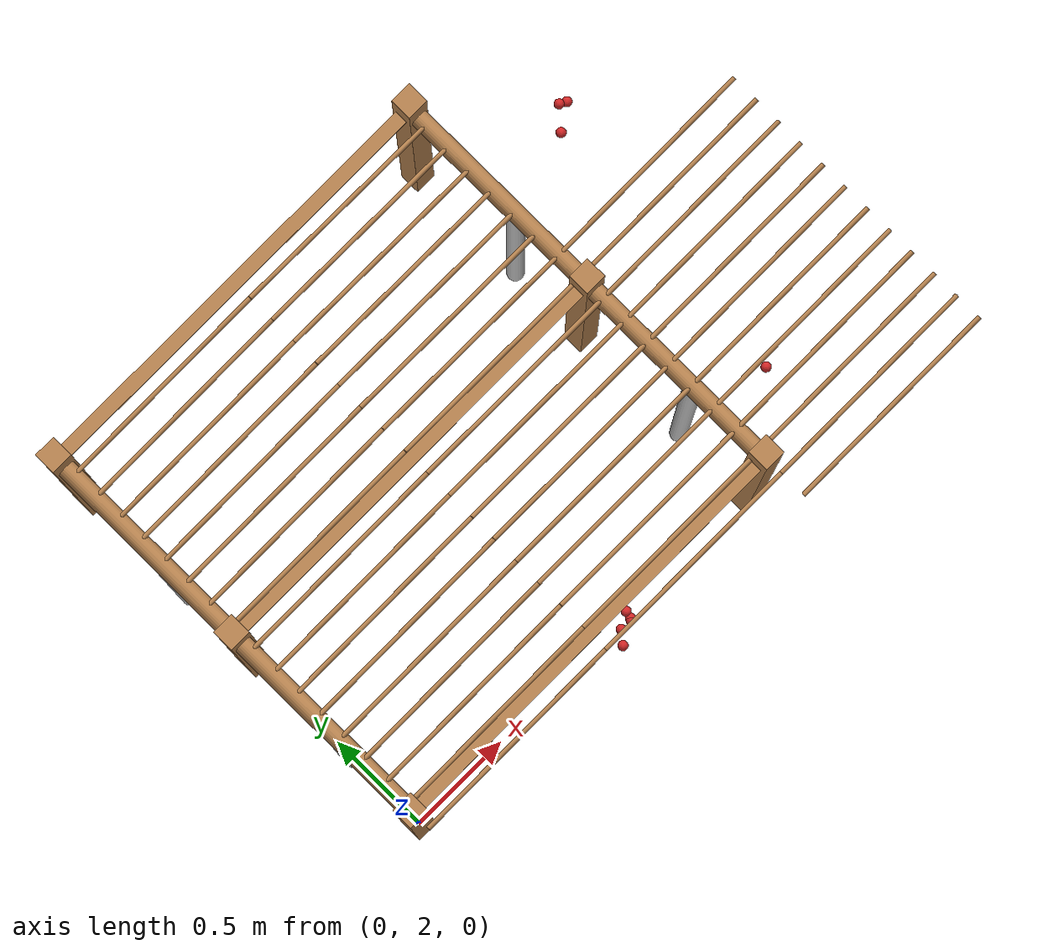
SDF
<sdf version="1.4">
 <model name="pergola">
  <include><name>post_2</name><pose>0.0 2.0 0 0 0 0</pose><uri>model://post</uri></include>
  <include><name>post_3</name><pose>0.0 3.0 0 0 0 0</pose><uri>model://post</uri></include>
  <include><name>post_4</name><pose>0.0 4.0 0 0 0 0</pose><uri>model://post</uri></include>
  <include><name>post_9</name><pose>2.0 2.0 0 0 0 0</pose><uri>model://post</uri></include>
  <include><name>post_10</name><pose>2.0 3.0 0 0 0 0</pose><uri>model://post</uri></include>
  <include><name>post_11</name><pose>2.0 4.0 0 0 0 0</pose><uri>model://post</uri></include>
  <link name="beam_2">
   <pose>1.0 2.0 1.81 0 0 0</pose>
   <collision name="collision"><geometry><box><size>2.0 0.06 0.02</size></box></geometry></collision>
   <visual name="visual">
    <geometry><box><size>2.0 0.06 0.02</size></box></geometry>
    <material><script><name>Gazebo/Wood</name></script></material>
   </visual>
   <inertial>
    <mass>5</mass>
    <inertia>
     <ixx>0.0016666666666666668</ixx>
     <ixy>0.0</ixy>
     <ixz>0.0</ixz>
     <iyy>1.6681666666666664</iyy>
     <iyz>0.0</iyz>
     <izz>1.6668333333333332</izz>
    </inertia>
   </inertial>
  </link>
  <link name="beam_3">
   <pose>1.0 3.0 1.81 0 0 0</pose>
   <collision name="collision"><geometry><box><size>2.0 0.06 0.02</size></box></geometry></collision>
   <visual name="visual">
    <geometry><box><size>2.0 0.06 0.02</size></box></geometry>
    <material><script><name>Gazebo/Wood</name></script></material>
   </visual>
   <inertial>
    <mass>5</mass>
    <inertia>
     <ixx>0.0016666666666666668</ixx>
     <ixy>0.0</ixy>
     <ixz>0.0</ixz>
     <iyy>1.6681666666666664</iyy>
     <iyz>0.0</iyz>
     <izz>1.6668333333333332</izz>
    </inertia>
   </inertial>
  </link>
  <link name="beam_4">
   <pose>1.0 4.0 1.81 0 0 0</pose>
   <collision name="collision"><geometry><box><size>2.0 0.06 0.02</size></box></geometry></collision>
   <visual name="visual">
    <geometry><box><size>2.0 0.06 0.02</size></box></geometry>
    <material><script><name>Gazebo/Wood</name></script></material>
   </visual>
   <inertial>
    <mass>5</mass>
    <inertia>
     <ixx>0.0016666666666666668</ixx>
     <ixy>0.0</ixy>
     <ixz>0.0</ixz>
     <iyy>1.6681666666666664</iyy>
     <iyz>0.0</iyz>
     <izz>1.6668333333333332</izz>
    </inertia>
   </inertial>
  </link>
  <include><name>tree_2</name><pose>0.0 2.4 0 0 0 0</pose><uri>model://tree_trunk</uri></include>
  <include><name>tree_3</name><pose>0.0 3.4 0 0 0 0</pose><uri>model://tree_trunk</uri></include>
  <include><name>tree_8</name><pose>2.0 2.4 0 0 0 0</pose><uri>model://tree_trunk</uri></include>
  <include><name>tree_9</name><pose>2.0 3.4 0 0 0 0</pose><uri>model://tree_trunk</uri></include>
  <link name="baseBranch_2">
   <pose>0.0 2.5 1.8 1.5707963267948966 0 0</pose>
   <collision name="collision">
    <geometry><cylinder><radius>0.04</radius><length>0.94</length></cylinder></geometry>
   </collision>
   <visual name="visual">
    <geometry><cylinder><radius>0.04</radius><length>0.94</length></cylinder></geometry>
    <material><script><name>Gazebo/WoodFloor</name></script></material>
   </visual>
   <inertial>
    <mass>10</mass>
    <inertia>
     <ixx>0.7403333333333334</ixx>
     <ixy>0.0</ixy>
     <ixz>0.0</ixz>
     <iyy>0.7403333333333334</iyy>
     <iyz>0.0</iyz>
     <izz>0.008</izz>
    </inertia>
   </inertial>
  </link>
  <link name="baseBranch_3">
   <pose>0.0 3.5 1.8 1.5707963267948966 0 0</pose>
   <collision name="collision">
    <geometry><cylinder><radius>0.04</radius><length>0.94</length></cylinder></geometry>
   </collision>
   <visual name="visual">
    <geometry><cylinder><radius>0.04</radius><length>0.94</length></cylinder></geometry>
    <material><script><name>Gazebo/WoodFloor</name></script></material>
   </visual>
   <inertial>
    <mass>10</mass>
    <inertia>
     <ixx>0.7403333333333334</ixx>
     <ixy>0.0</ixy>
     <ixz>0.0</ixz>
     <iyy>0.7403333333333334</iyy>
     <iyz>0.0</iyz>
     <izz>0.008</izz>
    </inertia>
   </inertial>
  </link>
  <link name="baseBranch_8">
   <pose>2.0 2.5 1.8 1.5707963267948966 0 0</pose>
   <collision name="collision">
    <geometry><cylinder><radius>0.04</radius><length>0.94</length></cylinder></geometry>
   </collision>
   <visual name="visual">
    <geometry><cylinder><radius>0.04</radius><length>0.94</length></cylinder></geometry>
    <material><script><name>Gazebo/WoodFloor</name></script></material>
   </visual>
   <inertial>
    <mass>10</mass>
    <inertia>
     <ixx>0.7403333333333334</ixx>
     <ixy>0.0</ixy>
     <ixz>0.0</ixz>
     <iyy>0.7403333333333334</iyy>
     <iyz>0.0</iyz>
     <izz>0.008</izz>
    </inertia>
   </inertial>
  </link>
  <link name="baseBranch_9">
   <pose>2.0 3.5 1.8 1.5707963267948966 0 0</pose>
   <collision name="collision">
    <geometry><cylinder><radius>0.04</radius><length>0.94</length></cylinder></geometry>
   </collision>
   <visual name="visual">
    <geometry><cylinder><radius>0.04</radius><length>0.94</length></cylinder></geometry>
    <material><script><name>Gazebo/WoodFloor</name></script></material>
   </visual>
   <inertial>
    <mass>10</mass>
    <inertia>
     <ixx>0.7403333333333334</ixx>
     <ixy>0.0</ixy>
     <ixz>0.0</ixz>
     <iyy>0.7403333333333334</iyy>
     <iyz>0.0</iyz>
     <izz>0.008</izz>
    </inertia>
   </inertial>
  </link>
  <link name="vine_30">
   <pose>0.5 1.905 1.85 0 1.5208379310729538 0</pose>
   <collision name="collision">
    <geometry><cylinder><radius>0.01</radius><length>1.0012492197250393</length></cylinder></geometry>
   </collision>
   <visual name="visual">
    <geometry><cylinder><radius>0.01</radius><length>1.0012492197250393</length></cylinder></geometry>
    <material><script><name>Gazebo/WoodFloor</name></script></material>
   </visual>
   <inertial>
    <mass>5</mass>
    <inertia>
     <ixx>0.41783333333333345</ixx>
     <ixy>0.0</ixy>
     <ixz>0.0</ixz>
     <iyy>0.41783333333333345</iyy>
     <iyz>0.0</iyz>
     <izz>0.00025</izz>
    </inertia>
   </inertial>
  </link>
  <link name="vine_31">
   <pose>1.5 1.905 1.85 0 -1.5208379310729538 0</pose>
   <collision name="collision">
    <geometry><cylinder><radius>0.01</radius><length>1.0012492197250393</length></cylinder></geometry>
   </collision>
   <visual name="visual">
    <geometry><cylinder><radius>0.01</radius><length>1.0012492197250393</length></cylinder></geometry>
    <material><script><name>Gazebo/WoodFloor</name></script></material>
   </visual>
   <inertial>
    <mass>5</mass>
    <inertia>
     <ixx>0.41783333333333345</ixx>
     <ixy>0.0</ixy>
     <ixz>0.0</ixz>
     <iyy>0.41783333333333345</iyy>
     <iyz>0.0</iyz>
     <izz>0.00025</izz>
    </inertia>
   </inertial>
  </link>
  <link name="vine_32">
   <pose>0.5 2.03 1.85 0 1.5208379310729538 0</pose>
   <collision name="collision">
    <geometry><cylinder><radius>0.01</radius><length>1.0012492197250393</length></cylinder></geometry>
   </collision>
   <visual name="visual">
    <geometry><cylinder><radius>0.01</radius><length>1.0012492197250393</length></cylinder></geometry>
    <material><script><name>Gazebo/WoodFloor</name></script></material>
   </visual>
   <inertial>
    <mass>5</mass>
    <inertia>
     <ixx>0.41783333333333345</ixx>
     <ixy>0.0</ixy>
     <ixz>0.0</ixz>
     <iyy>0.41783333333333345</iyy>
     <iyz>0.0</iyz>
     <izz>0.00025</izz>
    </inertia>
   </inertial>
  </link>
  <link name="vine_33">
   <pose>1.5 2.03 1.85 0 -1.5208379310729538 0</pose>
   <collision name="collision">
    <geometry><cylinder><radius>0.01</radius><length>1.0012492197250393</length></cylinder></geometry>
   </collision>
   <visual name="visual">
    <geometry><cylinder><radius>0.01</radius><length>1.0012492197250393</length></cylinder></geometry>
    <material><script><name>Gazebo/WoodFloor</name></script></material>
   </visual>
   <inertial>
    <mass>5</mass>
    <inertia>
     <ixx>0.41783333333333345</ixx>
     <ixy>0.0</ixy>
     <ixz>0.0</ixz>
     <iyy>0.41783333333333345</iyy>
     <iyz>0.0</iyz>
     <izz>0.00025</izz>
    </inertia>
   </inertial>
  </link>
  <link name="vine_34">
   <pose>0.5 2.155 1.85 0 1.5208379310729538 0</pose>
   <collision name="collision">
    <geometry><cylinder><radius>0.01</radius><length>1.0012492197250393</length></cylinder></geometry>
   </collision>
   <visual name="visual">
    <geometry><cylinder><radius>0.01</radius><length>1.0012492197250393</length></cylinder></geometry>
    <material><script><name>Gazebo/WoodFloor</name></script></material>
   </visual>
   <inertial>
    <mass>5</mass>
    <inertia>
     <ixx>0.41783333333333345</ixx>
     <ixy>0.0</ixy>
     <ixz>0.0</ixz>
     <iyy>0.41783333333333345</iyy>
     <iyz>0.0</iyz>
     <izz>0.00025</izz>
    </inertia>
   </inertial>
  </link>
  <link name="vine_35">
   <pose>1.5 2.155 1.85 0 -1.5208379310729538 0</pose>
   <collision name="collision">
    <geometry><cylinder><radius>0.01</radius><length>1.0012492197250393</length></cylinder></geometry>
   </collision>
   <visual name="visual">
    <geometry><cylinder><radius>0.01</radius><length>1.0012492197250393</length></cylinder></geometry>
    <material><script><name>Gazebo/WoodFloor</name></script></material>
   </visual>
   <inertial>
    <mass>5</mass>
    <inertia>
     <ixx>0.41783333333333345</ixx>
     <ixy>0.0</ixy>
     <ixz>0.0</ixz>
     <iyy>0.41783333333333345</iyy>
     <iyz>0.0</iyz>
     <izz>0.00025</izz>
    </inertia>
   </inertial>
  </link>
  <link name="vine_36">
   <pose>0.5 2.28 1.85 0 1.5208379310729538 0</pose>
   <collision name="collision">
    <geometry><cylinder><radius>0.01</radius><length>1.0012492197250393</length></cylinder></geometry>
   </collision>
   <visual name="visual">
    <geometry><cylinder><radius>0.01</radius><length>1.0012492197250393</length></cylinder></geometry>
    <material><script><name>Gazebo/WoodFloor</name></script></material>
   </visual>
   <inertial>
    <mass>5</mass>
    <inertia>
     <ixx>0.41783333333333345</ixx>
     <ixy>0.0</ixy>
     <ixz>0.0</ixz>
     <iyy>0.41783333333333345</iyy>
     <iyz>0.0</iyz>
     <izz>0.00025</izz>
    </inertia>
   </inertial>
  </link>
  <link name="vine_37">
   <pose>1.5 2.28 1.85 0 -1.5208379310729538 0</pose>
   <collision name="collision">
    <geometry><cylinder><radius>0.01</radius><length>1.0012492197250393</length></cylinder></geometry>
   </collision>
   <visual name="visual">
    <geometry><cylinder><radius>0.01</radius><length>1.0012492197250393</length></cylinder></geometry>
    <material><script><name>Gazebo/WoodFloor</name></script></material>
   </visual>
   <inertial>
    <mass>5</mass>
    <inertia>
     <ixx>0.41783333333333345</ixx>
     <ixy>0.0</ixy>
     <ixz>0.0</ixz>
     <iyy>0.41783333333333345</iyy>
     <iyz>0.0</iyz>
     <izz>0.00025</izz>
    </inertia>
   </inertial>
  </link>
  <link name="vine_38">
   <pose>0.5 2.405 1.85 0 1.5208379310729538 0</pose>
   <collision name="collision">
    <geometry><cylinder><radius>0.01</radius><length>1.0012492197250393</length></cylinder></geometry>
   </collision>
   <visual name="visual">
    <geometry><cylinder><radius>0.01</radius><length>1.0012492197250393</length></cylinder></geometry>
    <material><script><name>Gazebo/WoodFloor</name></script></material>
   </visual>
   <inertial>
    <mass>5</mass>
    <inertia>
     <ixx>0.41783333333333345</ixx>
     <ixy>0.0</ixy>
     <ixz>0.0</ixz>
     <iyy>0.41783333333333345</iyy>
     <iyz>0.0</iyz>
     <izz>0.00025</izz>
    </inertia>
   </inertial>
  </link>
  <link name="vine_39">
   <pose>1.5 2.405 1.85 0 -1.5208379310729538 0</pose>
   <collision name="collision">
    <geometry><cylinder><radius>0.01</radius><length>1.0012492197250393</length></cylinder></geometry>
   </collision>
   <visual name="visual">
    <geometry><cylinder><radius>0.01</radius><length>1.0012492197250393</length></cylinder></geometry>
    <material><script><name>Gazebo/WoodFloor</name></script></material>
   </visual>
   <inertial>
    <mass>5</mass>
    <inertia>
     <ixx>0.41783333333333345</ixx>
     <ixy>0.0</ixy>
     <ixz>0.0</ixz>
     <iyy>0.41783333333333345</iyy>
     <iyz>0.0</iyz>
     <izz>0.00025</izz>
    </inertia>
   </inertial>
  </link>
  <link name="vine_40">
   <pose>0.5 2.53 1.85 0 1.5208379310729538 0</pose>
   <collision name="collision">
    <geometry><cylinder><radius>0.01</radius><length>1.0012492197250393</length></cylinder></geometry>
   </collision>
   <visual name="visual">
    <geometry><cylinder><radius>0.01</radius><length>1.0012492197250393</length></cylinder></geometry>
    <material><script><name>Gazebo/WoodFloor</name></script></material>
   </visual>
   <inertial>
    <mass>5</mass>
    <inertia>
     <ixx>0.41783333333333345</ixx>
     <ixy>0.0</ixy>
     <ixz>0.0</ixz>
     <iyy>0.41783333333333345</iyy>
     <iyz>0.0</iyz>
     <izz>0.00025</izz>
    </inertia>
   </inertial>
  </link>
  <link name="vine_41">
   <pose>1.5 2.53 1.85 0 -1.5208379310729538 0</pose>
   <collision name="collision">
    <geometry><cylinder><radius>0.01</radius><length>1.0012492197250393</length></cylinder></geometry>
   </collision>
   <visual name="visual">
    <geometry><cylinder><radius>0.01</radius><length>1.0012492197250393</length></cylinder></geometry>
    <material><script><name>Gazebo/WoodFloor</name></script></material>
   </visual>
   <inertial>
    <mass>5</mass>
    <inertia>
     <ixx>0.41783333333333345</ixx>
     <ixy>0.0</ixy>
     <ixz>0.0</ixz>
     <iyy>0.41783333333333345</iyy>
     <iyz>0.0</iyz>
     <izz>0.00025</izz>
    </inertia>
   </inertial>
  </link>
  <link name="vine_42">
   <pose>0.5 2.655 1.85 0 1.5208379310729538 0</pose>
   <collision name="collision">
    <geometry><cylinder><radius>0.01</radius><length>1.0012492197250393</length></cylinder></geometry>
   </collision>
   <visual name="visual">
    <geometry><cylinder><radius>0.01</radius><length>1.0012492197250393</length></cylinder></geometry>
    <material><script><name>Gazebo/WoodFloor</name></script></material>
   </visual>
   <inertial>
    <mass>5</mass>
    <inertia>
     <ixx>0.41783333333333345</ixx>
     <ixy>0.0</ixy>
     <ixz>0.0</ixz>
     <iyy>0.41783333333333345</iyy>
     <iyz>0.0</iyz>
     <izz>0.00025</izz>
    </inertia>
   </inertial>
  </link>
  <link name="vine_43">
   <pose>1.5 2.655 1.85 0 -1.5208379310729538 0</pose>
   <collision name="collision">
    <geometry><cylinder><radius>0.01</radius><length>1.0012492197250393</length></cylinder></geometry>
   </collision>
   <visual name="visual">
    <geometry><cylinder><radius>0.01</radius><length>1.0012492197250393</length></cylinder></geometry>
    <material><script><name>Gazebo/WoodFloor</name></script></material>
   </visual>
   <inertial>
    <mass>5</mass>
    <inertia>
     <ixx>0.41783333333333345</ixx>
     <ixy>0.0</ixy>
     <ixz>0.0</ixz>
     <iyy>0.41783333333333345</iyy>
     <iyz>0.0</iyz>
     <izz>0.00025</izz>
    </inertia>
   </inertial>
  </link>
  <link name="vine_44">
   <pose>0.5 2.78 1.85 0 1.5208379310729538 0</pose>
   <collision name="collision">
    <geometry><cylinder><radius>0.01</radius><length>1.0012492197250393</length></cylinder></geometry>
   </collision>
   <visual name="visual">
    <geometry><cylinder><radius>0.01</radius><length>1.0012492197250393</length></cylinder></geometry>
    <material><script><name>Gazebo/WoodFloor</name></script></material>
   </visual>
   <inertial>
    <mass>5</mass>
    <inertia>
     <ixx>0.41783333333333345</ixx>
     <ixy>0.0</ixy>
     <ixz>0.0</ixz>
     <iyy>0.41783333333333345</iyy>
     <iyz>0.0</iyz>
     <izz>0.00025</izz>
    </inertia>
   </inertial>
  </link>
  <link name="vine_45">
   <pose>1.5 2.78 1.85 0 -1.5208379310729538 0</pose>
   <collision name="collision">
    <geometry><cylinder><radius>0.01</radius><length>1.0012492197250393</length></cylinder></geometry>
   </collision>
   <visual name="visual">
    <geometry><cylinder><radius>0.01</radius><length>1.0012492197250393</length></cylinder></geometry>
    <material><script><name>Gazebo/WoodFloor</name></script></material>
   </visual>
   <inertial>
    <mass>5</mass>
    <inertia>
     <ixx>0.41783333333333345</ixx>
     <ixy>0.0</ixy>
     <ixz>0.0</ixz>
     <iyy>0.41783333333333345</iyy>
     <iyz>0.0</iyz>
     <izz>0.00025</izz>
    </inertia>
   </inertial>
  </link>
  <link name="vine_46">
   <pose>0.5 2.905 1.85 0 1.5208379310729538 0</pose>
   <collision name="collision">
    <geometry><cylinder><radius>0.01</radius><length>1.0012492197250393</length></cylinder></geometry>
   </collision>
   <visual name="visual">
    <geometry><cylinder><radius>0.01</radius><length>1.0012492197250393</length></cylinder></geometry>
    <material><script><name>Gazebo/WoodFloor</name></script></material>
   </visual>
   <inertial>
    <mass>5</mass>
    <inertia>
     <ixx>0.41783333333333345</ixx>
     <ixy>0.0</ixy>
     <ixz>0.0</ixz>
     <iyy>0.41783333333333345</iyy>
     <iyz>0.0</iyz>
     <izz>0.00025</izz>
    </inertia>
   </inertial>
  </link>
  <link name="vine_47">
   <pose>1.5 2.905 1.85 0 -1.5208379310729538 0</pose>
   <collision name="collision">
    <geometry><cylinder><radius>0.01</radius><length>1.0012492197250393</length></cylinder></geometry>
   </collision>
   <visual name="visual">
    <geometry><cylinder><radius>0.01</radius><length>1.0012492197250393</length></cylinder></geometry>
    <material><script><name>Gazebo/WoodFloor</name></script></material>
   </visual>
   <inertial>
    <mass>5</mass>
    <inertia>
     <ixx>0.41783333333333345</ixx>
     <ixy>0.0</ixy>
     <ixz>0.0</ixz>
     <iyy>0.41783333333333345</iyy>
     <iyz>0.0</iyz>
     <izz>0.00025</izz>
    </inertia>
   </inertial>
  </link>
  <link name="vine_48">
   <pose>0.5 3.03 1.85 0 1.5208379310729538 0</pose>
   <collision name="collision">
    <geometry><cylinder><radius>0.01</radius><length>1.0012492197250393</length></cylinder></geometry>
   </collision>
   <visual name="visual">
    <geometry><cylinder><radius>0.01</radius><length>1.0012492197250393</length></cylinder></geometry>
    <material><script><name>Gazebo/WoodFloor</name></script></material>
   </visual>
   <inertial>
    <mass>5</mass>
    <inertia>
     <ixx>0.41783333333333345</ixx>
     <ixy>0.0</ixy>
     <ixz>0.0</ixz>
     <iyy>0.41783333333333345</iyy>
     <iyz>0.0</iyz>
     <izz>0.00025</izz>
    </inertia>
   </inertial>
  </link>
  <link name="vine_49">
   <pose>1.5 3.03 1.85 0 -1.5208379310729538 0</pose>
   <collision name="collision">
    <geometry><cylinder><radius>0.01</radius><length>1.0012492197250393</length></cylinder></geometry>
   </collision>
   <visual name="visual">
    <geometry><cylinder><radius>0.01</radius><length>1.0012492197250393</length></cylinder></geometry>
    <material><script><name>Gazebo/WoodFloor</name></script></material>
   </visual>
   <inertial>
    <mass>5</mass>
    <inertia>
     <ixx>0.41783333333333345</ixx>
     <ixy>0.0</ixy>
     <ixz>0.0</ixz>
     <iyy>0.41783333333333345</iyy>
     <iyz>0.0</iyz>
     <izz>0.00025</izz>
    </inertia>
   </inertial>
  </link>
  <link name="vine_50">
   <pose>0.5 3.155 1.85 0 1.5208379310729538 0</pose>
   <collision name="collision">
    <geometry><cylinder><radius>0.01</radius><length>1.0012492197250393</length></cylinder></geometry>
   </collision>
   <visual name="visual">
    <geometry><cylinder><radius>0.01</radius><length>1.0012492197250393</length></cylinder></geometry>
    <material><script><name>Gazebo/WoodFloor</name></script></material>
   </visual>
   <inertial>
    <mass>5</mass>
    <inertia>
     <ixx>0.41783333333333345</ixx>
     <ixy>0.0</ixy>
     <ixz>0.0</ixz>
     <iyy>0.41783333333333345</iyy>
     <iyz>0.0</iyz>
     <izz>0.00025</izz>
    </inertia>
   </inertial>
  </link>
  <link name="vine_51">
   <pose>1.5 3.155 1.85 0 -1.5208379310729538 0</pose>
   <collision name="collision">
    <geometry><cylinder><radius>0.01</radius><length>1.0012492197250393</length></cylinder></geometry>
   </collision>
   <visual name="visual">
    <geometry><cylinder><radius>0.01</radius><length>1.0012492197250393</length></cylinder></geometry>
    <material><script><name>Gazebo/WoodFloor</name></script></material>
   </visual>
   <inertial>
    <mass>5</mass>
    <inertia>
     <ixx>0.41783333333333345</ixx>
     <ixy>0.0</ixy>
     <ixz>0.0</ixz>
     <iyy>0.41783333333333345</iyy>
     <iyz>0.0</iyz>
     <izz>0.00025</izz>
    </inertia>
   </inertial>
  </link>
  <link name="vine_52">
   <pose>0.5 3.28 1.85 0 1.5208379310729538 0</pose>
   <collision name="collision">
    <geometry><cylinder><radius>0.01</radius><length>1.0012492197250393</length></cylinder></geometry>
   </collision>
   <visual name="visual">
    <geometry><cylinder><radius>0.01</radius><length>1.0012492197250393</length></cylinder></geometry>
    <material><script><name>Gazebo/WoodFloor</name></script></material>
   </visual>
   <inertial>
    <mass>5</mass>
    <inertia>
     <ixx>0.41783333333333345</ixx>
     <ixy>0.0</ixy>
     <ixz>0.0</ixz>
     <iyy>0.41783333333333345</iyy>
     <iyz>0.0</iyz>
     <izz>0.00025</izz>
    </inertia>
   </inertial>
  </link>
  <link name="vine_53">
   <pose>1.5 3.28 1.85 0 -1.5208379310729538 0</pose>
   <collision name="collision">
    <geometry><cylinder><radius>0.01</radius><length>1.0012492197250393</length></cylinder></geometry>
   </collision>
   <visual name="visual">
    <geometry><cylinder><radius>0.01</radius><length>1.0012492197250393</length></cylinder></geometry>
    <material><script><name>Gazebo/WoodFloor</name></script></material>
   </visual>
   <inertial>
    <mass>5</mass>
    <inertia>
     <ixx>0.41783333333333345</ixx>
     <ixy>0.0</ixy>
     <ixz>0.0</ixz>
     <iyy>0.41783333333333345</iyy>
     <iyz>0.0</iyz>
     <izz>0.00025</izz>
    </inertia>
   </inertial>
  </link>
  <link name="vine_54">
   <pose>0.5 3.405 1.85 0 1.5208379310729538 0</pose>
   <collision name="collision">
    <geometry><cylinder><radius>0.01</radius><length>1.0012492197250393</length></cylinder></geometry>
   </collision>
   <visual name="visual">
    <geometry><cylinder><radius>0.01</radius><length>1.0012492197250393</length></cylinder></geometry>
    <material><script><name>Gazebo/WoodFloor</name></script></material>
   </visual>
   <inertial>
    <mass>5</mass>
    <inertia>
     <ixx>0.41783333333333345</ixx>
     <ixy>0.0</ixy>
     <ixz>0.0</ixz>
     <iyy>0.41783333333333345</iyy>
     <iyz>0.0</iyz>
     <izz>0.00025</izz>
    </inertia>
   </inertial>
  </link>
  <link name="vine_55">
   <pose>1.5 3.405 1.85 0 -1.5208379310729538 0</pose>
   <collision name="collision">
    <geometry><cylinder><radius>0.01</radius><length>1.0012492197250393</length></cylinder></geometry>
   </collision>
   <visual name="visual">
    <geometry><cylinder><radius>0.01</radius><length>1.0012492197250393</length></cylinder></geometry>
    <material><script><name>Gazebo/WoodFloor</name></script></material>
   </visual>
   <inertial>
    <mass>5</mass>
    <inertia>
     <ixx>0.41783333333333345</ixx>
     <ixy>0.0</ixy>
     <ixz>0.0</ixz>
     <iyy>0.41783333333333345</iyy>
     <iyz>0.0</iyz>
     <izz>0.00025</izz>
    </inertia>
   </inertial>
  </link>
  <link name="vine_56">
   <pose>0.5 3.53 1.85 0 1.5208379310729538 0</pose>
   <collision name="collision">
    <geometry><cylinder><radius>0.01</radius><length>1.0012492197250393</length></cylinder></geometry>
   </collision>
   <visual name="visual">
    <geometry><cylinder><radius>0.01</radius><length>1.0012492197250393</length></cylinder></geometry>
    <material><script><name>Gazebo/WoodFloor</name></script></material>
   </visual>
   <inertial>
    <mass>5</mass>
    <inertia>
     <ixx>0.41783333333333345</ixx>
     <ixy>0.0</ixy>
     <ixz>0.0</ixz>
     <iyy>0.41783333333333345</iyy>
     <iyz>0.0</iyz>
     <izz>0.00025</izz>
    </inertia>
   </inertial>
  </link>
  <link name="vine_57">
   <pose>1.5 3.53 1.85 0 -1.5208379310729538 0</pose>
   <collision name="collision">
    <geometry><cylinder><radius>0.01</radius><length>1.0012492197250393</length></cylinder></geometry>
   </collision>
   <visual name="visual">
    <geometry><cylinder><radius>0.01</radius><length>1.0012492197250393</length></cylinder></geometry>
    <material><script><name>Gazebo/WoodFloor</name></script></material>
   </visual>
   <inertial>
    <mass>5</mass>
    <inertia>
     <ixx>0.41783333333333345</ixx>
     <ixy>0.0</ixy>
     <ixz>0.0</ixz>
     <iyy>0.41783333333333345</iyy>
     <iyz>0.0</iyz>
     <izz>0.00025</izz>
    </inertia>
   </inertial>
  </link>
  <link name="vine_58">
   <pose>0.5 3.655 1.85 0 1.5208379310729538 0</pose>
   <collision name="collision">
    <geometry><cylinder><radius>0.01</radius><length>1.0012492197250393</length></cylinder></geometry>
   </collision>
   <visual name="visual">
    <geometry><cylinder><radius>0.01</radius><length>1.0012492197250393</length></cylinder></geometry>
    <material><script><name>Gazebo/WoodFloor</name></script></material>
   </visual>
   <inertial>
    <mass>5</mass>
    <inertia>
     <ixx>0.41783333333333345</ixx>
     <ixy>0.0</ixy>
     <ixz>0.0</ixz>
     <iyy>0.41783333333333345</iyy>
     <iyz>0.0</iyz>
     <izz>0.00025</izz>
    </inertia>
   </inertial>
  </link>
  <link name="vine_59">
   <pose>1.5 3.655 1.85 0 -1.5208379310729538 0</pose>
   <collision name="collision">
    <geometry><cylinder><radius>0.01</radius><length>1.0012492197250393</length></cylinder></geometry>
   </collision>
   <visual name="visual">
    <geometry><cylinder><radius>0.01</radius><length>1.0012492197250393</length></cylinder></geometry>
    <material><script><name>Gazebo/WoodFloor</name></script></material>
   </visual>
   <inertial>
    <mass>5</mass>
    <inertia>
     <ixx>0.41783333333333345</ixx>
     <ixy>0.0</ixy>
     <ixz>0.0</ixz>
     <iyy>0.41783333333333345</iyy>
     <iyz>0.0</iyz>
     <izz>0.00025</izz>
    </inertia>
   </inertial>
  </link>
  <link name="vine_60">
   <pose>0.5 3.78 1.85 0 1.5208379310729538 0</pose>
   <collision name="collision">
    <geometry><cylinder><radius>0.01</radius><length>1.0012492197250393</length></cylinder></geometry>
   </collision>
   <visual name="visual">
    <geometry><cylinder><radius>0.01</radius><length>1.0012492197250393</length></cylinder></geometry>
    <material><script><name>Gazebo/WoodFloor</name></script></material>
   </visual>
   <inertial>
    <mass>5</mass>
    <inertia>
     <ixx>0.41783333333333345</ixx>
     <ixy>0.0</ixy>
     <ixz>0.0</ixz>
     <iyy>0.41783333333333345</iyy>
     <iyz>0.0</iyz>
     <izz>0.00025</izz>
    </inertia>
   </inertial>
  </link>
  <link name="vine_61">
   <pose>1.5 3.78 1.85 0 -1.5208379310729538 0</pose>
   <collision name="collision">
    <geometry><cylinder><radius>0.01</radius><length>1.0012492197250393</length></cylinder></geometry>
   </collision>
   <visual name="visual">
    <geometry><cylinder><radius>0.01</radius><length>1.0012492197250393</length></cylinder></geometry>
    <material><script><name>Gazebo/WoodFloor</name></script></material>
   </visual>
   <inertial>
    <mass>5</mass>
    <inertia>
     <ixx>0.41783333333333345</ixx>
     <ixy>0.0</ixy>
     <ixz>0.0</ixz>
     <iyy>0.41783333333333345</iyy>
     <iyz>0.0</iyz>
     <izz>0.00025</izz>
    </inertia>
   </inertial>
  </link>
  <link name="vine_62">
   <pose>0.5 3.905 1.85 0 1.5208379310729538 0</pose>
   <collision name="collision">
    <geometry><cylinder><radius>0.01</radius><length>1.0012492197250393</length></cylinder></geometry>
   </collision>
   <visual name="visual">
    <geometry><cylinder><radius>0.01</radius><length>1.0012492197250393</length></cylinder></geometry>
    <material><script><name>Gazebo/WoodFloor</name></script></material>
   </visual>
   <inertial>
    <mass>5</mass>
    <inertia>
     <ixx>0.41783333333333345</ixx>
     <ixy>0.0</ixy>
     <ixz>0.0</ixz>
     <iyy>0.41783333333333345</iyy>
     <iyz>0.0</iyz>
     <izz>0.00025</izz>
    </inertia>
   </inertial>
  </link>
  <link name="vine_63">
   <pose>1.5 3.905 1.85 0 -1.5208379310729538 0</pose>
   <collision name="collision">
    <geometry><cylinder><radius>0.01</radius><length>1.0012492197250393</length></cylinder></geometry>
   </collision>
   <visual name="visual">
    <geometry><cylinder><radius>0.01</radius><length>1.0012492197250393</length></cylinder></geometry>
    <material><script><name>Gazebo/WoodFloor</name></script></material>
   </visual>
   <inertial>
    <mass>5</mass>
    <inertia>
     <ixx>0.41783333333333345</ixx>
     <ixy>0.0</ixy>
     <ixz>0.0</ixz>
     <iyy>0.41783333333333345</iyy>
     <iyz>0.0</iyz>
     <izz>0.00025</izz>
    </inertia>
   </inertial>
  </link>
  <link name="vine_124">
   <pose>2.5 1.78 1.85 0 1.5208379310729538 0</pose>
   <collision name="collision">
    <geometry><cylinder><radius>0.01</radius><length>1.0012492197250393</length></cylinder></geometry>
   </collision>
   <visual name="visual">
    <geometry><cylinder><radius>0.01</radius><length>1.0012492197250393</length></cylinder></geometry>
    <material><script><name>Gazebo/WoodFloor</name></script></material>
   </visual>
   <inertial>
    <mass>5</mass>
    <inertia>
     <ixx>0.41783333333333345</ixx>
     <ixy>0.0</ixy>
     <ixz>0.0</ixz>
     <iyy>0.41783333333333345</iyy>
     <iyz>0.0</iyz>
     <izz>0.00025</izz>
    </inertia>
   </inertial>
  </link>
  <link name="vine_126">
   <pose>2.5 1.905 1.85 0 1.5208379310729538 0</pose>
   <collision name="collision">
    <geometry><cylinder><radius>0.01</radius><length>1.0012492197250393</length></cylinder></geometry>
   </collision>
   <visual name="visual">
    <geometry><cylinder><radius>0.01</radius><length>1.0012492197250393</length></cylinder></geometry>
    <material><script><name>Gazebo/WoodFloor</name></script></material>
   </visual>
   <inertial>
    <mass>5</mass>
    <inertia>
     <ixx>0.41783333333333345</ixx>
     <ixy>0.0</ixy>
     <ixz>0.0</ixz>
     <iyy>0.41783333333333345</iyy>
     <iyz>0.0</iyz>
     <izz>0.00025</izz>
    </inertia>
   </inertial>
  </link>
  <link name="vine_128">
   <pose>2.5 2.03 1.85 0 1.5208379310729538 0</pose>
   <collision name="collision">
    <geometry><cylinder><radius>0.01</radius><length>1.0012492197250393</length></cylinder></geometry>
   </collision>
   <visual name="visual">
    <geometry><cylinder><radius>0.01</radius><length>1.0012492197250393</length></cylinder></geometry>
    <material><script><name>Gazebo/WoodFloor</name></script></material>
   </visual>
   <inertial>
    <mass>5</mass>
    <inertia>
     <ixx>0.41783333333333345</ixx>
     <ixy>0.0</ixy>
     <ixz>0.0</ixz>
     <iyy>0.41783333333333345</iyy>
     <iyz>0.0</iyz>
     <izz>0.00025</izz>
    </inertia>
   </inertial>
  </link>
  <link name="vine_130">
   <pose>2.5 2.155 1.85 0 1.5208379310729538 0</pose>
   <collision name="collision">
    <geometry><cylinder><radius>0.01</radius><length>1.0012492197250393</length></cylinder></geometry>
   </collision>
   <visual name="visual">
    <geometry><cylinder><radius>0.01</radius><length>1.0012492197250393</length></cylinder></geometry>
    <material><script><name>Gazebo/WoodFloor</name></script></material>
   </visual>
   <inertial>
    <mass>5</mass>
    <inertia>
     <ixx>0.41783333333333345</ixx>
     <ixy>0.0</ixy>
     <ixz>0.0</ixz>
     <iyy>0.41783333333333345</iyy>
     <iyz>0.0</iyz>
     <izz>0.00025</izz>
    </inertia>
   </inertial>
  </link>
  <link name="vine_132">
   <pose>2.5 2.28 1.85 0 1.5208379310729538 0</pose>
   <collision name="collision">
    <geometry><cylinder><radius>0.01</radius><length>1.0012492197250393</length></cylinder></geometry>
   </collision>
   <visual name="visual">
    <geometry><cylinder><radius>0.01</radius><length>1.0012492197250393</length></cylinder></geometry>
    <material><script><name>Gazebo/WoodFloor</name></script></material>
   </visual>
   <inertial>
    <mass>5</mass>
    <inertia>
     <ixx>0.41783333333333345</ixx>
     <ixy>0.0</ixy>
     <ixz>0.0</ixz>
     <iyy>0.41783333333333345</iyy>
     <iyz>0.0</iyz>
     <izz>0.00025</izz>
    </inertia>
   </inertial>
  </link>
  <link name="vine_134">
   <pose>2.5 2.405 1.85 0 1.5208379310729538 0</pose>
   <collision name="collision">
    <geometry><cylinder><radius>0.01</radius><length>1.0012492197250393</length></cylinder></geometry>
   </collision>
   <visual name="visual">
    <geometry><cylinder><radius>0.01</radius><length>1.0012492197250393</length></cylinder></geometry>
    <material><script><name>Gazebo/WoodFloor</name></script></material>
   </visual>
   <inertial>
    <mass>5</mass>
    <inertia>
     <ixx>0.41783333333333345</ixx>
     <ixy>0.0</ixy>
     <ixz>0.0</ixz>
     <iyy>0.41783333333333345</iyy>
     <iyz>0.0</iyz>
     <izz>0.00025</izz>
    </inertia>
   </inertial>
  </link>
  <link name="vine_136">
   <pose>2.5 2.53 1.85 0 1.5208379310729538 0</pose>
   <collision name="collision">
    <geometry><cylinder><radius>0.01</radius><length>1.0012492197250393</length></cylinder></geometry>
   </collision>
   <visual name="visual">
    <geometry><cylinder><radius>0.01</radius><length>1.0012492197250393</length></cylinder></geometry>
    <material><script><name>Gazebo/WoodFloor</name></script></material>
   </visual>
   <inertial>
    <mass>5</mass>
    <inertia>
     <ixx>0.41783333333333345</ixx>
     <ixy>0.0</ixy>
     <ixz>0.0</ixz>
     <iyy>0.41783333333333345</iyy>
     <iyz>0.0</iyz>
     <izz>0.00025</izz>
    </inertia>
   </inertial>
  </link>
  <link name="vine_138">
   <pose>2.5 2.655 1.85 0 1.5208379310729538 0</pose>
   <collision name="collision">
    <geometry><cylinder><radius>0.01</radius><length>1.0012492197250393</length></cylinder></geometry>
   </collision>
   <visual name="visual">
    <geometry><cylinder><radius>0.01</radius><length>1.0012492197250393</length></cylinder></geometry>
    <material><script><name>Gazebo/WoodFloor</name></script></material>
   </visual>
   <inertial>
    <mass>5</mass>
    <inertia>
     <ixx>0.41783333333333345</ixx>
     <ixy>0.0</ixy>
     <ixz>0.0</ixz>
     <iyy>0.41783333333333345</iyy>
     <iyz>0.0</iyz>
     <izz>0.00025</izz>
    </inertia>
   </inertial>
  </link>
  <link name="vine_140">
   <pose>2.5 2.78 1.85 0 1.5208379310729538 0</pose>
   <collision name="collision">
    <geometry><cylinder><radius>0.01</radius><length>1.0012492197250393</length></cylinder></geometry>
   </collision>
   <visual name="visual">
    <geometry><cylinder><radius>0.01</radius><length>1.0012492197250393</length></cylinder></geometry>
    <material><script><name>Gazebo/WoodFloor</name></script></material>
   </visual>
   <inertial>
    <mass>5</mass>
    <inertia>
     <ixx>0.41783333333333345</ixx>
     <ixy>0.0</ixy>
     <ixz>0.0</ixz>
     <iyy>0.41783333333333345</iyy>
     <iyz>0.0</iyz>
     <izz>0.00025</izz>
    </inertia>
   </inertial>
  </link>
  <link name="vine_142">
   <pose>2.5 2.905 1.85 0 1.5208379310729538 0</pose>
   <collision name="collision">
    <geometry><cylinder><radius>0.01</radius><length>1.0012492197250393</length></cylinder></geometry>
   </collision>
   <visual name="visual">
    <geometry><cylinder><radius>0.01</radius><length>1.0012492197250393</length></cylinder></geometry>
    <material><script><name>Gazebo/WoodFloor</name></script></material>
   </visual>
   <inertial>
    <mass>5</mass>
    <inertia>
     <ixx>0.41783333333333345</ixx>
     <ixy>0.0</ixy>
     <ixz>0.0</ixz>
     <iyy>0.41783333333333345</iyy>
     <iyz>0.0</iyz>
     <izz>0.00025</izz>
    </inertia>
   </inertial>
  </link>
  <link name="vine_144">
   <pose>2.5 3.03 1.85 0 1.5208379310729538 0</pose>
   <collision name="collision">
    <geometry><cylinder><radius>0.01</radius><length>1.0012492197250393</length></cylinder></geometry>
   </collision>
   <visual name="visual">
    <geometry><cylinder><radius>0.01</radius><length>1.0012492197250393</length></cylinder></geometry>
    <material><script><name>Gazebo/WoodFloor</name></script></material>
   </visual>
   <inertial>
    <mass>5</mass>
    <inertia>
     <ixx>0.41783333333333345</ixx>
     <ixy>0.0</ixy>
     <ixz>0.0</ixz>
     <iyy>0.41783333333333345</iyy>
     <iyz>0.0</iyz>
     <izz>0.00025</izz>
    </inertia>
   </inertial>
  </link>
  <link name="vine_146">
   <pose>2.5 3.155 1.85 0 1.5208379310729538 0</pose>
   <collision name="collision">
    <geometry><cylinder><radius>0.01</radius><length>1.0012492197250393</length></cylinder></geometry>
   </collision>
   <visual name="visual">
    <geometry><cylinder><radius>0.01</radius><length>1.0012492197250393</length></cylinder></geometry>
    <material><script><name>Gazebo/WoodFloor</name></script></material>
   </visual>
   <inertial>
    <mass>5</mass>
    <inertia>
     <ixx>0.41783333333333345</ixx>
     <ixy>0.0</ixy>
     <ixz>0.0</ixz>
     <iyy>0.41783333333333345</iyy>
     <iyz>0.0</iyz>
     <izz>0.00025</izz>
    </inertia>
   </inertial>
  </link>
  <link name="fruit_19">
   <pose>1.0798969765130126 1.8756016557699142 1.5353099236349108 0 0 0</pose>
   <collision name="fruit_collision_19"><geometry><sphere><radius>0.022</radius></sphere></geometry></collision>
   <visual name="visual">
    <geometry><sphere><radius>0.022</radius></sphere></geometry>
    <material><script><name>Gazebo/Red</name></script></material>
   </visual>
   <inertial>
    <mass>0.05</mass>
    <inertia>
     <ixx>9.679999999999999e-06</ixx>
     <ixy>0.0</ixy>
     <ixz>0.0</ixz>
     <iyy>9.679999999999999e-06</iyy>
     <iyz>0.0</iyz>
     <izz>9.679999999999999e-06</izz>
    </inertia>
   </inertial>
   <sensor name="fruit_contact_19" type="contact">
    <contact><collision>fruit_collision_19</collision></contact>
   </sensor>
  </link>
  <link name="fruit_25">
   <pose>2.263119656754566 2.247756528513946 1.8130240812685263 0 0 0</pose>
   <collision name="fruit_collision_25"><geometry><sphere><radius>0.022</radius></sphere></geometry></collision>
   <visual name="visual">
    <geometry><sphere><radius>0.022</radius></sphere></geometry>
    <material><script><name>Gazebo/Red</name></script></material>
   </visual>
   <inertial>
    <mass>0.05</mass>
    <inertia>
     <ixx>9.679999999999999e-06</ixx>
     <ixy>0.0</ixy>
     <ixz>0.0</ixz>
     <iyy>9.679999999999999e-06</iyy>
     <iyz>0.0</iyz>
     <izz>9.679999999999999e-06</izz>
    </inertia>
   </inertial>
   <sensor name="fruit_contact_25" type="contact">
    <contact><collision>fruit_collision_25</collision></contact>
   </sensor>
  </link>
  <link name="fruit_27">
   <pose>2.35889947051265 3.4991065640494092 1.8157796636427792 0 0 0</pose>
   <collision name="fruit_collision_27"><geometry><sphere><radius>0.022</radius></sphere></geometry></collision>
   <visual name="visual">
    <geometry><sphere><radius>0.022</radius></sphere></geometry>
    <material><script><name>Gazebo/Red</name></script></material>
   </visual>
   <inertial>
    <mass>0.05</mass>
    <inertia>
     <ixx>9.679999999999999e-06</ixx>
     <ixy>0.0</ixy>
     <ixz>0.0</ixz>
     <iyy>9.679999999999999e-06</iyy>
     <iyz>0.0</iyz>
     <izz>9.679999999999999e-06</izz>
    </inertia>
   </inertial>
   <sensor name="fruit_contact_27" type="contact">
    <contact><collision>fruit_collision_27</collision></contact>
   </sensor>
  </link>
  <link name="fruit_47">
   <pose>1.1219054667779422 1.9269630538795313 1.5271611587476934 0 0 0</pose>
   <collision name="fruit_collision_47"><geometry><sphere><radius>0.022</radius></sphere></geometry></collision>
   <visual name="visual">
    <geometry><sphere><radius>0.022</radius></sphere></geometry>
    <material><script><name>Gazebo/Red</name></script></material>
   </visual>
   <inertial>
    <mass>0.05</mass>
    <inertia>
     <ixx>9.679999999999999e-06</ixx>
     <ixy>0.0</ixy>
     <ixz>0.0</ixz>
     <iyy>9.679999999999999e-06</iyy>
     <iyz>0.0</iyz>
     <izz>9.679999999999999e-06</izz>
    </inertia>
   </inertial>
   <sensor name="fruit_contact_47" type="contact">
    <contact><collision>fruit_collision_47</collision></contact>
   </sensor>
  </link>
  <link name="fruit_56">
   <pose>2.4662630940324544 3.572227653534475 1.8043134645818213 0 0 0</pose>
   <collision name="fruit_collision_56"><geometry><sphere><radius>0.022</radius></sphere></geometry></collision>
   <visual name="visual">
    <geometry><sphere><radius>0.022</radius></sphere></geometry>
    <material><script><name>Gazebo/Red</name></script></material>
   </visual>
   <inertial>
    <mass>0.05</mass>
    <inertia>
     <ixx>9.679999999999999e-06</ixx>
     <ixy>0.0</ixy>
     <ixz>0.0</ixz>
     <iyy>9.679999999999999e-06</iyy>
     <iyz>0.0</iyz>
     <izz>9.679999999999999e-06</izz>
    </inertia>
   </inertial>
   <sensor name="fruit_contact_56" type="contact">
    <contact><collision>fruit_collision_56</collision></contact>
   </sensor>
  </link>
  <link name="fruit_81">
   <pose>2.4370532847709585 3.586957861289247 1.8112609263342805 0 0 0</pose>
   <collision name="fruit_collision_81"><geometry><sphere><radius>0.022</radius></sphere></geometry></collision>
   <visual name="visual">
    <geometry><sphere><radius>0.022</radius></sphere></geometry>
    <material><script><name>Gazebo/Red</name></script></material>
   </visual>
   <inertial>
    <mass>0.05</mass>
    <inertia>
     <ixx>9.679999999999999e-06</ixx>
     <ixy>0.0</ixy>
     <ixz>0.0</ixz>
     <iyy>9.679999999999999e-06</iyy>
     <iyz>0.0</iyz>
     <izz>9.679999999999999e-06</izz>
    </inertia>
   </inertial>
   <sensor name="fruit_contact_81" type="contact">
    <contact><collision>fruit_collision_81</collision></contact>
   </sensor>
  </link>
  <link name="fruit_89">
   <pose>1.1876277362370045 1.964405977035953 1.533009821632739 0 0 0</pose>
   <collision name="fruit_collision_89"><geometry><sphere><radius>0.022</radius></sphere></geometry></collision>
   <visual name="visual">
    <geometry><sphere><radius>0.022</radius></sphere></geometry>
    <material><script><name>Gazebo/Red</name></script></material>
   </visual>
   <inertial>
    <mass>0.05</mass>
    <inertia>
     <ixx>9.679999999999999e-06</ixx>
     <ixy>0.0</ixy>
     <ixz>0.0</ixz>
     <iyy>9.679999999999999e-06</iyy>
     <iyz>0.0</iyz>
     <izz>9.679999999999999e-06</izz>
    </inertia>
   </inertial>
   <sensor name="fruit_contact_89" type="contact">
    <contact><collision>fruit_collision_89</collision></contact>
   </sensor>
  </link>
  <link name="fruit_90">
   <pose>1.1765387431329197 1.926120163873241 1.5282615485210427 0 0 0</pose>
   <collision name="fruit_collision_90"><geometry><sphere><radius>0.022</radius></sphere></geometry></collision>
   <visual name="visual">
    <geometry><sphere><radius>0.022</radius></sphere></geometry>
    <material><script><name>Gazebo/Red</name></script></material>
   </visual>
   <inertial>
    <mass>0.05</mass>
    <inertia>
     <ixx>9.679999999999999e-06</ixx>
     <ixy>0.0</ixy>
     <ixz>0.0</ixz>
     <iyy>9.679999999999999e-06</iyy>
     <iyz>0.0</iyz>
     <izz>9.679999999999999e-06</izz>
    </inertia>
   </inertial>
   <sensor name="fruit_contact_90" type="contact">
    <contact><collision>fruit_collision_90</collision></contact>
   </sensor>
  </link>
  <link name="fruit_91">
   <pose>1.1812418463860077 1.9330239315066842 1.5261559625782168 0 0 0</pose>
   <collision name="fruit_collision_91"><geometry><sphere><radius>0.022</radius></sphere></geometry></collision>
   <visual name="visual">
    <geometry><sphere><radius>0.022</radius></sphere></geometry>
    <material><script><name>Gazebo/Red</name></script></material>
   </visual>
   <inertial>
    <mass>0.05</mass>
    <inertia>
     <ixx>9.679999999999999e-06</ixx>
     <ixy>0.0</ixy>
     <ixz>0.0</ixz>
     <iyy>9.679999999999999e-06</iyy>
     <iyz>0.0</iyz>
     <izz>9.679999999999999e-06</izz>
    </inertia>
   </inertial>
   <sensor name="fruit_contact_91" type="contact">
    <contact><collision>fruit_collision_91</collision></contact>
   </sensor>
  </link>
 </model>
</sdf>
